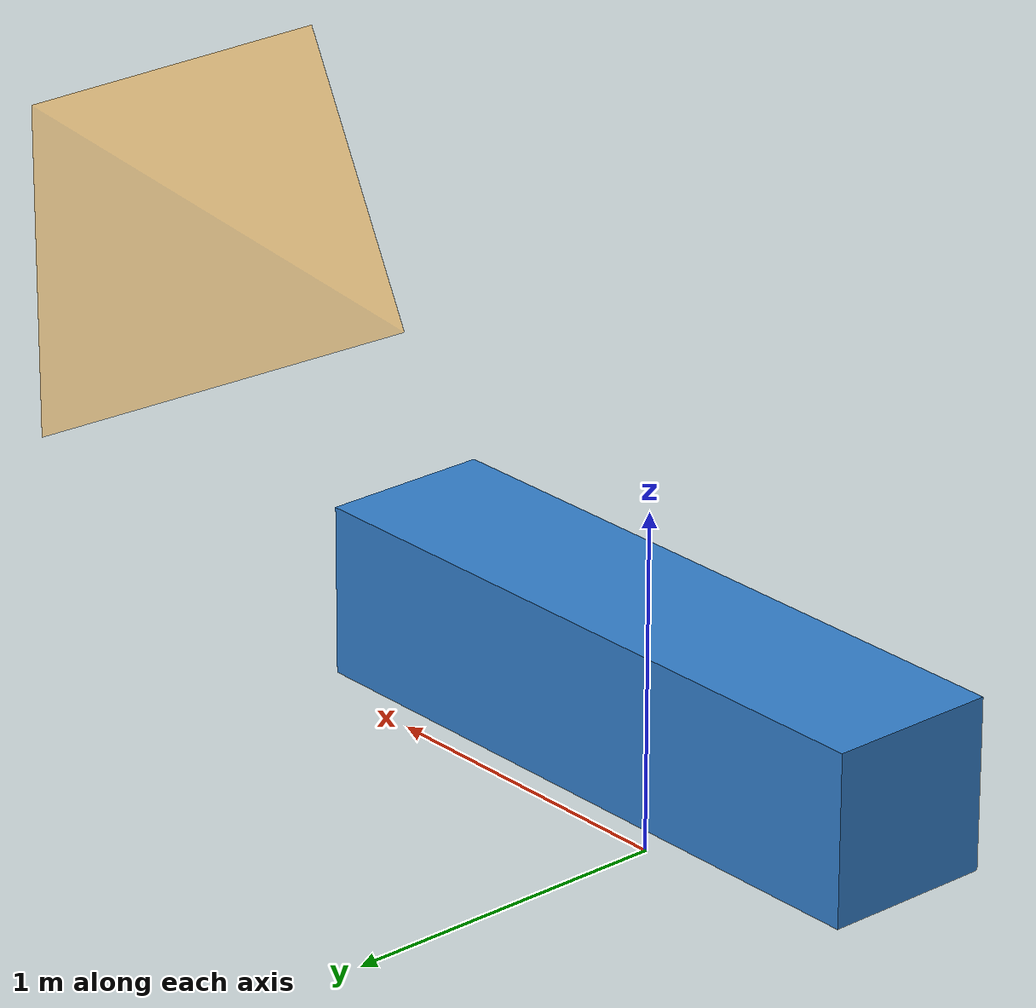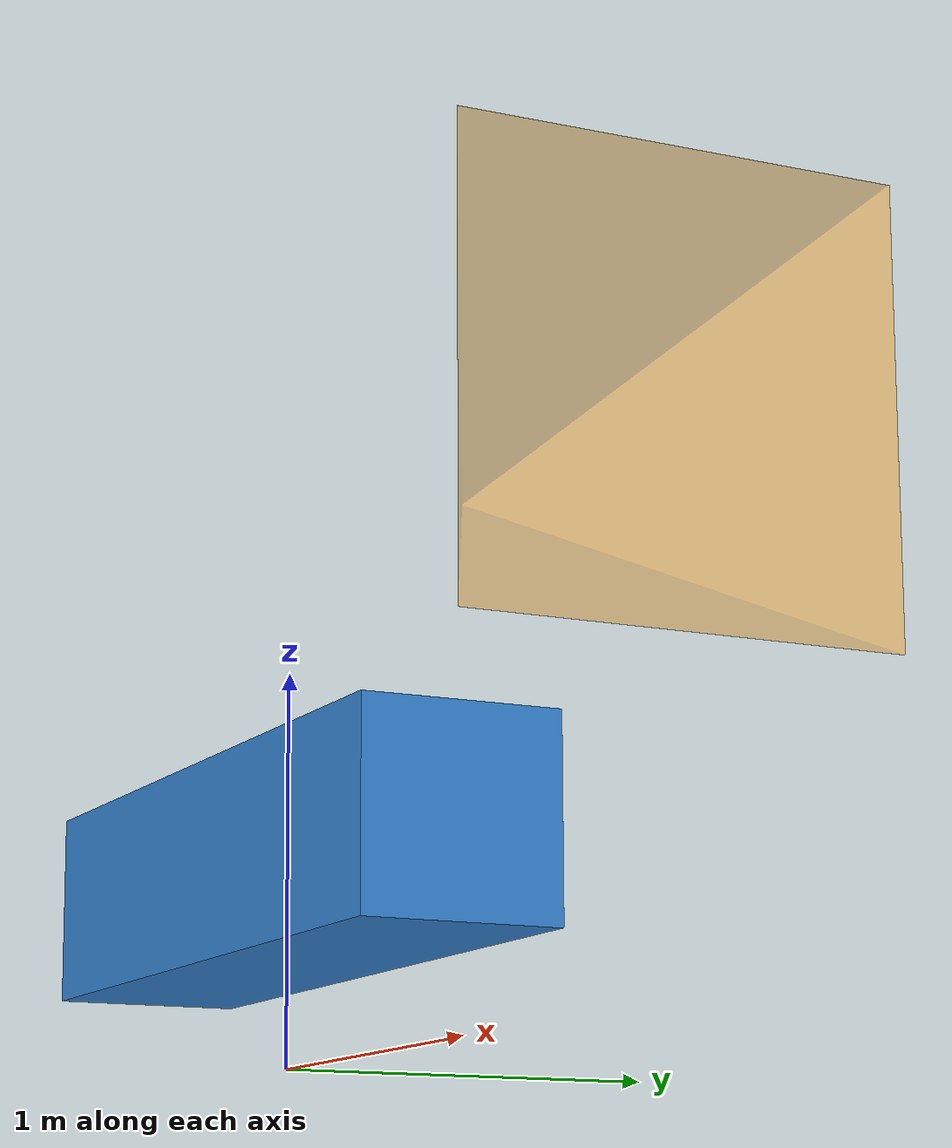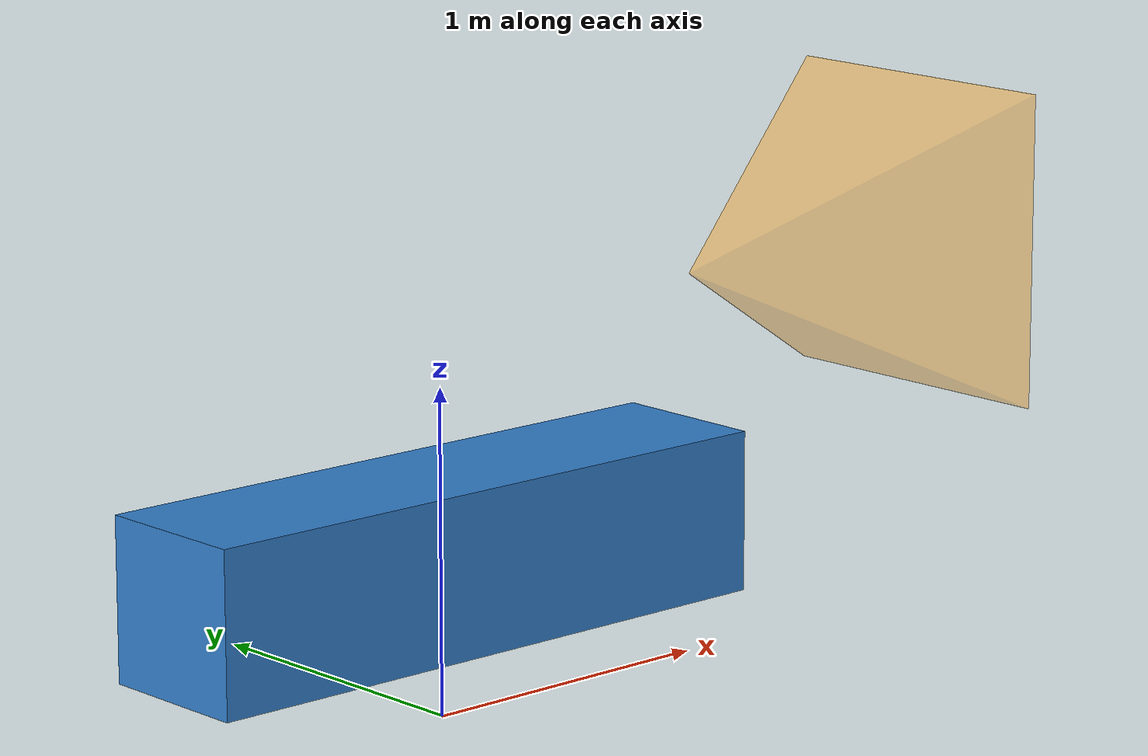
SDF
<?xml version="1.0"?>
<sdf version="1.6">
  <model name="box_panjang">
    <static>false</static>

    <!--       BASE LINK       -->
    <link name="base_link">
      <pose>0 0 0.5 0 0 0</pose>

      <inertial>
        <mass>50.0</mass>
        <inertia>
          <ixx>2.08</ixx>
          <ixy>0</ixy>
          <ixz>0</ixz>
          <iyy>10.42</iyy>
          <iyz>0</iyz>
          <izz>10.42</izz>
        </inertia>
      </inertial>

      <collision name="collision">
        <geometry>
          <box>
            <size>2.0 0.5 0.5</size>
          </box>
        </geometry>
      </collision>

      <visual name="visual">
        <geometry>
          <box>
            <size>2.0 0.5 0.5</size>
          </box>
        </geometry>
        <material>
          <ambient>0.2 0.5 0.8 1</ambient>
          <diffuse>0.2 0.5 0.8 1</diffuse>
          <specular>0.1 0.1 0.1 1</specular>
        </material>
      </visual>
    </link>

    <!--      CAMERA LINK      -->
    <link name="camera_link">
      <pose>1 0 1.2 0 0 0</pose>  <!-- posisi kamera relatif dari base -->

      <!-- Visual Frustum -->
      <visual name="camera_frustum">
        <geometry>
          <mesh>
            <uri>model://camera_frustum/meshes/frustum.dae</uri>
            <scale>1 1 1</scale>
          </mesh>
        </geometry>

        <material>
          <ambient>1 0.6 0 0.4</ambient>
          <diffuse>1 0.6 0 0.4</diffuse>
          <emissive>1 0.5 0 0.5</emissive>
          <transparency>0.4</transparency>
        </material>
      </visual>

      <inertial>
        <mass>0.1</mass>
        <inertia>
          <ixx>0.001</ixx>
          <iyy>0.001</iyy>
          <izz>0.001</izz>
        </inertia>
      </inertial>

      <!-- Sensor Kamera -->
      <sensor name="camera_sensor" type="camera">
        <always_on>true</always_on>
        <update_rate>30</update_rate>

        <camera>
          <horizontal_fov>1.05</horizontal_fov>
          <image>
            <width>640</width>
            <height>480</height>
            <format>R8G8B8</format>
          </image>
          <clip>
            <near>0.1</near>
            <far>100</far>
          </clip>
        </camera>

        <plugin name="camera_plugin" filename="libgazebo_ros_camera.so">
          <robotNamespace>/</robotNamespace>
          <cameraName>box_camera</cameraName>
          <imageTopicName>image_raw</imageTopicName>
          <cameraInfoTopicName>camera_info</cameraInfoTopicName>
        </plugin>
      </sensor>
    </link>

    <!--   JOINT CAMERA-BASE   -->
    <joint name="camera_joint" type="fixed">
      <parent>base_link</parent>
      <child>camera_link</child>
    </joint>

    <!--        PLUGIN         -->
    <plugin name="box_control" filename="libbox_control_plugin.so">
      <ros>
        <namespace>/</namespace>
        <remapping>cmd_vel:=/cmd_vel</remapping>
      </ros>
      <update_rate>50.0</update_rate>
    </plugin>

  </model>
</sdf>
